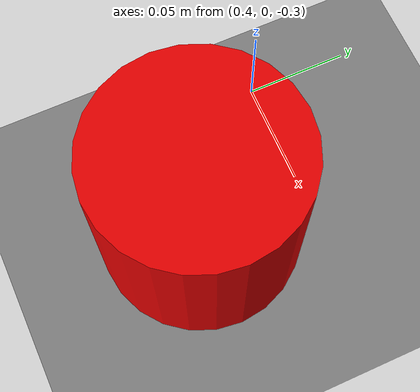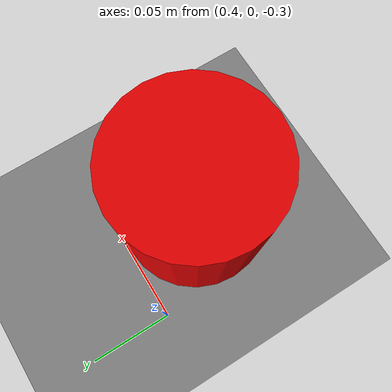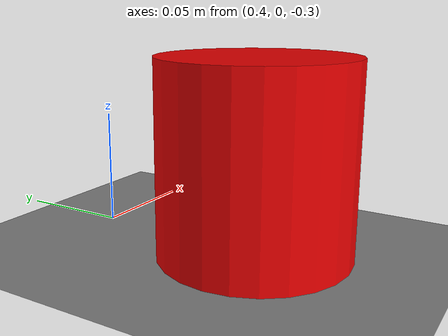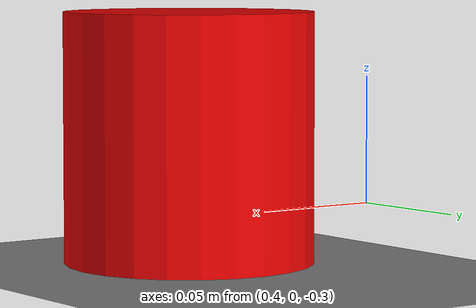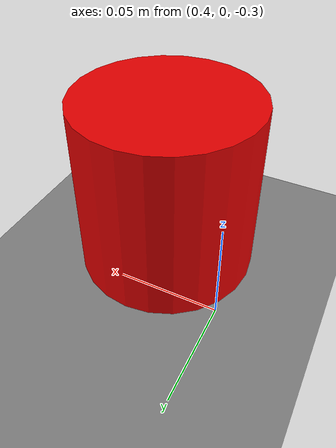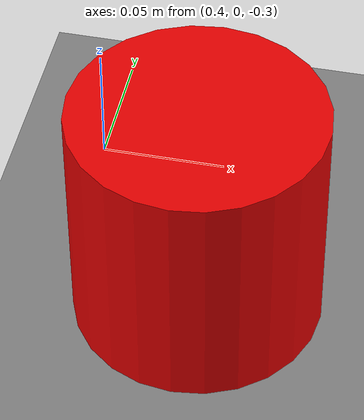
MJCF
<mujoco model="pushworld">
  <compiler inertiafromgeom="true" angle="radian" coordinate="local"/>
  <option gravity="0 0 0" integrator="Euler" />

  <default>
    <joint armature='0.04' damping="1" limited="true"/>
    <geom friction=".8 .1 .1" density="300" margin="0.002" condim="1" contype="0" conaffinity="0"/>
  </default>

  <worldbody>
    <light diffuse=".5 .5 .5" pos="0 0 3" dir="0 0 -1"/>
    <geom name="table" type="plane" pos="0 0.5 -0.325" size="1 1 0.1" contype="1" conaffinity="1"/>

    <body name="object" pos="0.45 -0.05 -0.275" >
      <geom rgba=".9 0 0 0" type="sphere" size="0.05 0.05 0.05" density="0.00001" conaffinity="0"/>
      <geom rgba=".9 0 0 1" type="cylinder" size="0.05 0.05 0.05" density="0.00001" contype="1" conaffinity="0"/>
      <joint name="obj_slidey" type="slide" pos="0 0 0" axis="0 1 0" range="-10.3213 10.3" damping="0.5"/>
      <joint name="obj_slidex" type="slide" pos="0 0 0" axis="1 0 0" range="-10.3213 10.3" damping="0.5"/>
    </body>
  </worldbody>
</mujoco>
